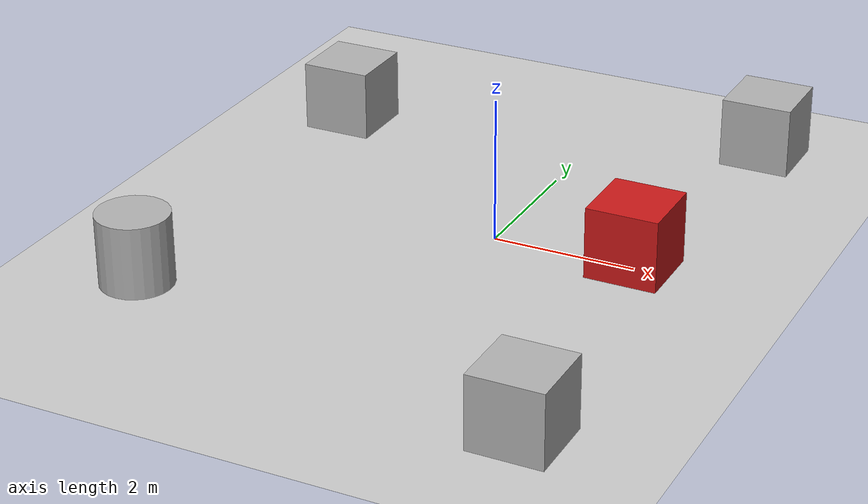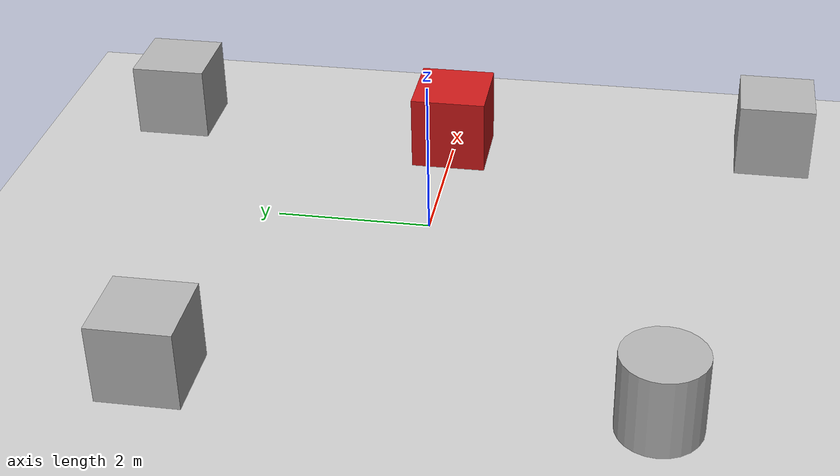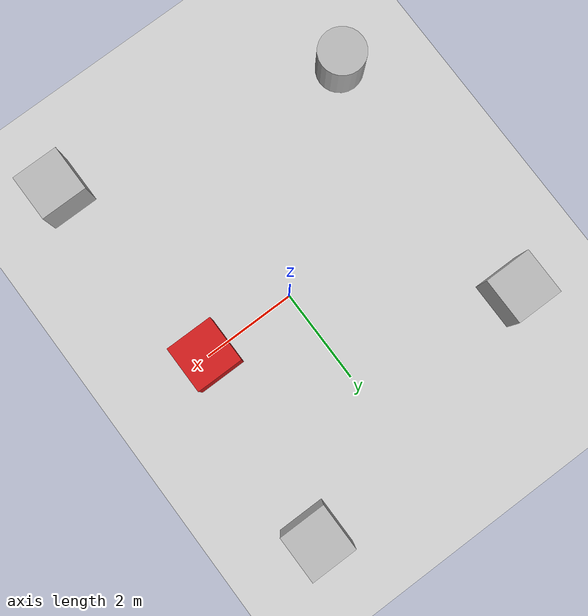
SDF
<sdf version='1.10'>
  <world name='empty'>
    <physics name='1ms' type='ignored'>
      <max_step_size>0.001</max_step_size>
      <real_time_factor>1</real_time_factor>
      <real_time_update_rate>1000</real_time_update_rate>
    </physics>
    <plugin name='gz::sim::systems::Physics' filename='gz-sim-physics-system'/>
    <plugin name='gz::sim::systems::UserCommands' filename='gz-sim-user-commands-system'/>
    <plugin name='gz::sim::systems::SceneBroadcaster' filename='gz-sim-scene-broadcaster-system'/>
    <plugin name='gz::sim::systems::Contact' filename='gz-sim-contact-system'/>
    <plugin name='gz::sim::systems::Sensors' filename='gz-sim-sensors-system'/> <!-- ✅ AJOUT ICI -->
    <gravity>0 0 -9.8000000000000007</gravity>
    <magnetic_field>5.5644999999999998e-06 2.2875799999999999e-05 -4.2388400000000002e-05</magnetic_field>
    <atmosphere type='adiabatic'/>
    <scene>
      <ambient>0.400000006 0.400000006 0.400000006 1</ambient>
      <background>0.699999988 0.699999988 0.699999988 1</background>
      <shadows>true</shadows>
    </scene>

    <model name="test_box">
      <pose>2 0 0.5 0 0 0</pose>
      <link name="link">
        <visual name="visual">
          <geometry>
            <box><size>1 1 1</size></box>
          </geometry>
          <material>
            <ambient>0.8 0.1 0.1 1</ambient>
            <diffuse>0.8 0.1 0.1 1</diffuse>
          </material>
        </visual>
        <collision name="collision">
          <geometry>
            <box><size>1 1 1</size></box>
          </geometry>
        </collision>
      </link>
    </model>

    <model name='ground_plane'>
      <static>true</static>
      <link name='link'>
        <collision name='collision'>
          <geometry>
            <plane>
              <normal>0 0 1</normal>
              <size>100 100</size>
            </plane>
          </geometry>
          <surface>
            <friction>
              <ode/>
            </friction>
            <bounce/>
            <contact/>
          </surface>
        </collision>
        <visual name='visual'>
          <geometry>
            <plane>
              <normal>0 0 1</normal>
              <size>100 100</size>
            </plane>
          </geometry>
          <material>
            <ambient>0.800000012 0.800000012 0.800000012 1</ambient>
            <diffuse>0.800000012 0.800000012 0.800000012 1</diffuse>
            <specular>0.800000012 0.800000012 0.800000012 1</specular>
          </material>
        </visual>
        <pose>0 0 0 0 0 0</pose>
        <inertial>
          <pose>0 0 0 0 0 0</pose>
          <mass>1</mass>
          <inertia>
            <ixx>1</ixx>
            <ixy>0</ixy>
            <ixz>0</ixz>
            <iyy>1</iyy>
            <iyz>0</iyz>
            <izz>1</izz>
          </inertia>
        </inertial>
        <enable_wind>false</enable_wind>
      </link>
      <pose>0 0 0 0 0 0</pose>
      <self_collide>false</self_collide>
    </model>
    <model name='box'>
      <pose>2.3746479442417936 4.0304199471833693 0.5 0 0 0</pose>
      <link name='box_link'>
        <inertial>
          <inertia>
            <ixx>0.16666</ixx>
            <ixy>0</ixy>
            <ixz>0</ixz>
            <iyy>0.16666</iyy>
            <iyz>0</iyz>
            <izz>0.16666</izz>
          </inertia>
          <mass>1</mass>
          <pose>0 0 0 0 0 0</pose>
        </inertial>
        <collision name='box_collision'>
          <geometry>
            <box>
              <size>1 1 1</size>
            </box>
          </geometry>
          <surface>
            <friction>
              <ode/>
            </friction>
            <bounce/>
            <contact/>
          </surface>
        </collision>
        <visual name='box_visual'>
          <geometry>
            <box>
              <size>1 1 1</size>
            </box>
          </geometry>
          <material>
            <ambient>0.300000012 0.300000012 0.300000012 1</ambient>
            <diffuse>0.699999988 0.699999988 0.699999988 1</diffuse>
            <specular>1 1 1 1</specular>
          </material>
        </visual>
        <pose>0 0 0 0 0 0</pose>
        <enable_wind>false</enable_wind>
      </link>
      <static>false</static>
      <self_collide>false</self_collide>
    </model>
    <model name='box_0'>
      <pose>2.4367650180426157 -4.4056935837763236 0.5 0 0 0</pose>
      <link name='box_link'>
        <inertial>
          <inertia>
            <ixx>0.16666</ixx>
            <ixy>0</ixy>
            <ixz>0</ixz>
            <iyy>0.16666</iyy>
            <iyz>0</iyz>
            <izz>0.16666</izz>
          </inertia>
          <mass>1</mass>
          <pose>0 0 0 0 0 0</pose>
        </inertial>
        <collision name='box_collision'>
          <geometry>
            <box>
              <size>1 1 1</size>
            </box>
          </geometry>
          <surface>
            <friction>
              <ode/>
            </friction>
            <bounce/>
            <contact/>
          </surface>
        </collision>
        <visual name='box_visual'>
          <geometry>
            <box>
              <size>1 1 1</size>
            </box>
          </geometry>
          <material>
            <ambient>0.300000012 0.300000012 0.300000012 1</ambient>
            <diffuse>0.699999988 0.699999988 0.699999988 1</diffuse>
            <specular>1 1 1 1</specular>
          </material>
        </visual>
        <pose>0 0 0 0 0 0</pose>
        <enable_wind>false</enable_wind>
      </link>
      <static>false</static>
      <self_collide>false</self_collide>
    </model>
    <model name='box_1'>
      <pose>-3.5799712849434573 2.5731836884056398 0.5 0 0 0</pose>
      <link name='box_link'>
        <inertial>
          <inertia>
            <ixx>0.16666</ixx>
            <ixy>0</ixy>
            <ixz>0</ixz>
            <iyy>0.16666</iyy>
            <iyz>0</iyz>
            <izz>0.16666</izz>
          </inertia>
          <mass>1</mass>
          <pose>0 0 0 0 0 0</pose>
        </inertial>
        <collision name='box_collision'>
          <geometry>
            <box>
              <size>1 1 1</size>
            </box>
          </geometry>
          <surface>
            <friction>
              <ode/>
            </friction>
            <bounce/>
            <contact/>
          </surface>
        </collision>
        <visual name='box_visual'>
          <geometry>
            <box>
              <size>1 1 1</size>
            </box>
          </geometry>
          <material>
            <ambient>0.300000012 0.300000012 0.300000012 1</ambient>
            <diffuse>0.699999988 0.699999988 0.699999988 1</diffuse>
            <specular>1 1 1 1</specular>
          </material>
        </visual>
        <pose>0 0 0 0 0 0</pose>
        <enable_wind>false</enable_wind>
      </link>
      <static>false</static>
      <self_collide>false</self_collide>
    </model>
    <model name='cylinder'>
      <pose>-3.6227164985650746 -3.1347193952524672 0.5 0 0 0</pose>
      <link name='cylinder_link'>
        <inertial>
          <inertia>
            <ixx>0.14580000000000001</ixx>
            <ixy>0</ixy>
            <ixz>0</ixz>
            <iyy>0.14580000000000001</iyy>
            <iyz>0</iyz>
            <izz>0.125</izz>
          </inertia>
          <mass>1</mass>
          <pose>0 0 0 0 0 0</pose>
        </inertial>
        <collision name='cylinder_collision'>
          <geometry>
            <cylinder>
              <radius>0.5</radius>
              <length>1</length>
            </cylinder>
          </geometry>
          <surface>
            <friction>
              <ode/>
            </friction>
            <bounce/>
            <contact/>
          </surface>
        </collision>
        <visual name='cylinder_visual'>
          <geometry>
            <cylinder>
              <radius>0.5</radius>
              <length>1</length>
            </cylinder>
          </geometry>
          <material>
            <ambient>0.300000012 0.300000012 0.300000012 1</ambient>
            <diffuse>0.699999988 0.699999988 0.699999988 1</diffuse>
            <specular>1 1 1 1</specular>
          </material>
        </visual>
        <pose>0 0 0 0 0 0</pose>
        <enable_wind>false</enable_wind>
      </link>
      <static>false</static>
      <self_collide>false</self_collide>
    </model>
    <light name='sun' type='directional'>
      <pose>0 0 10 0 0 0</pose>
      <cast_shadows>true</cast_shadows>
      <intensity>1</intensity>
      <direction>-0.5 0.10000000000000001 -0.90000000000000002</direction>
      <diffuse>0.800000012 0.800000012 0.800000012 1</diffuse>
      <specular>0.200000003 0.200000003 0.200000003 1</specular>
      <attenuation>
        <range>1000</range>
        <linear>0.01</linear>
        <constant>0.90000000000000002</constant>
        <quadratic>0.001</quadratic>
      </attenuation>
      <spot>
        <inner_angle>0</inner_angle>
        <outer_angle>0</outer_angle>
        <falloff>0</falloff>
      </spot>
    </light>
    <plugin
      filename="gz-sim-imu-system"
      name="gz::sim::systems::Imu">
    </plugin>
  </world>
</sdf>
